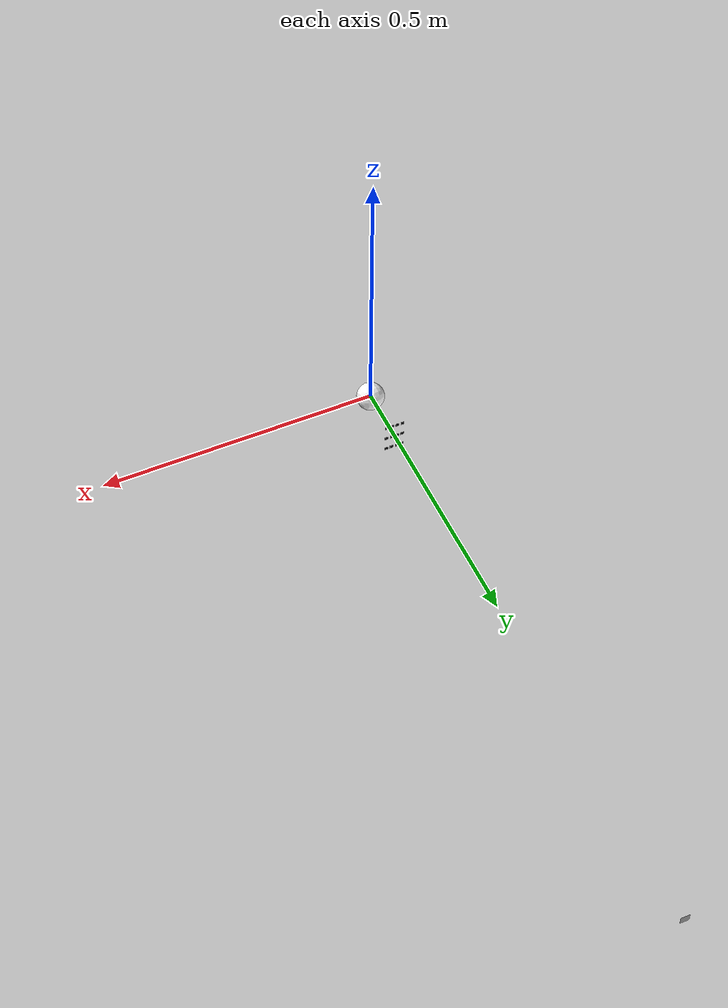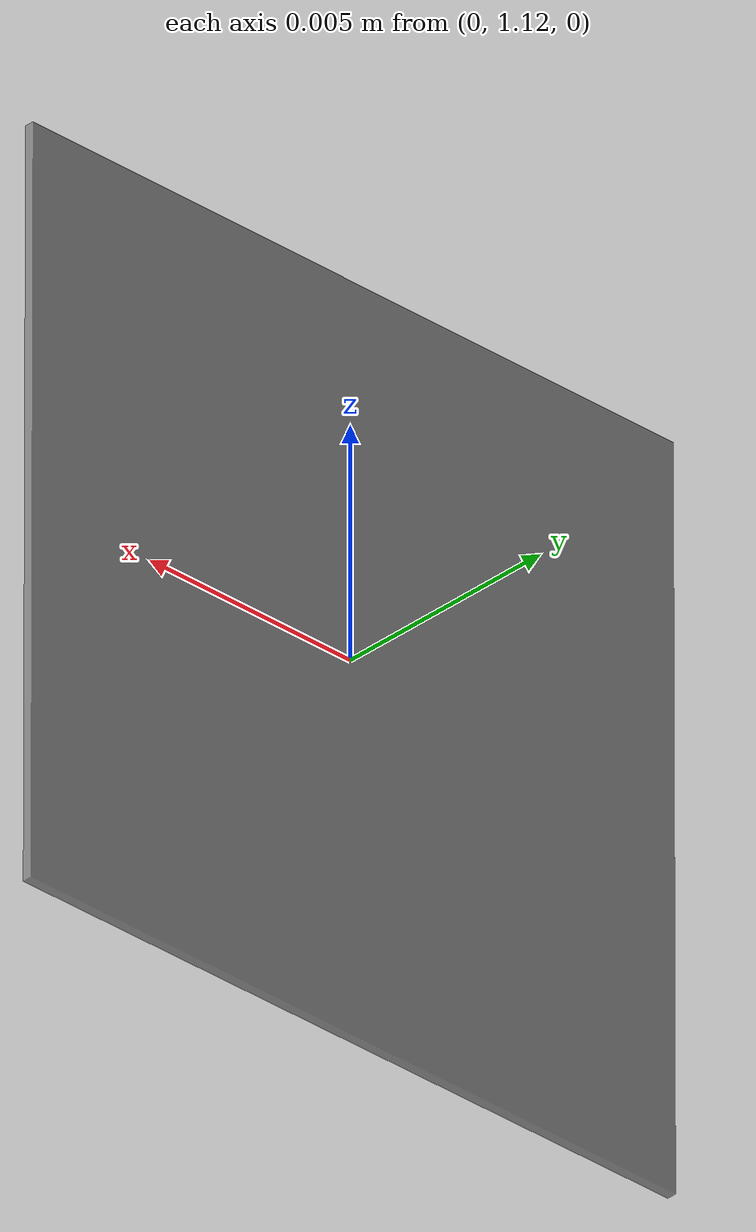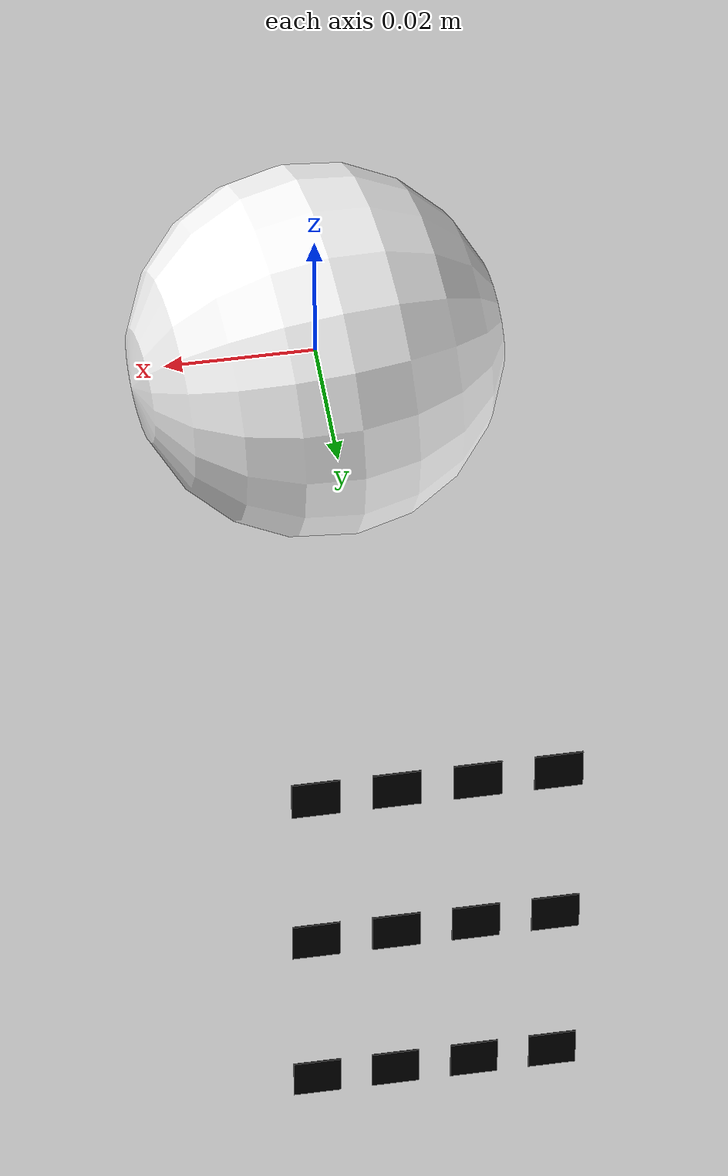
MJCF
<?xml version="1.0"?>
<mujoco>
    <compiler angle="radian"/>
    <option collision="all" timestep="0.002"/>
    <size njmax="1000" nconmax="400"/>
    <default class="main">
        <default class="eye">
            <position ctrllimited="true" kp="5"/>
            <joint type="hinge" stiffness="0.0" damping="0.5" armature="0.0" limited="true"/>
        </default>
        <default class="temp-moving-bgp">
            <joint type="slide" stiffness="0.0" damping="0.5" armature="0.0" limited="true"/>
        </default>
        <default class="smart-glass-grid">
            <geom type="box" size="0.0030 0.0001 0.0030" rgba="0 0 0 1"/>
        </default>
        <default class="background-grid">
            <geom type="box" size="0.008 0.0001 0.008" rgba="0.5 0.5 0.5 0.8"/>
        </default>
    </default>
    <asset>
        <texture type="skybox" builtin="gradient" rgb1="1 1 1" rgb2="0.6 0.8 1" width="256" height="256"/>
        <texture type="cube" name="blue-eye" file="assets/blue_eye_texture_circle.png" gridsize="3 4" gridlayout=".U..LFRB.D.."/>
        <material name="blue-eye" texture="blue-eye" texuniform="true"/>
        <mesh name="eye" file="assets/basic_eye_2.stl" scale="0.05 0.05 0.05"/>
    </asset>
    <worldbody>
        <light name="scene_directional_light" directional="true" castshadow="false" cutoff="4" exponent="20"
               diffuse="1 1 1" specular="0 0 0" pos=".9 .3 2.5"/>

        <camera name="env" pos="-0.5 -0.35 0.15" euler="1.0 -0.85 -0.37"/>

        <body name="eye" pos="0 0 0" quat="0.7071068 0.7071068 0 0">
            <geom name="eye" type="sphere" size="0.025" material="blue-eye" rgba="1 1 1 1" quat="0.6625191 0.0130711 0.7488417 0.0115643"/>
            <camera name="eye" fovy="90"/>
            <joint name="eye-joint-x" class="eye" axis="1 0 0" range="-1.0 1.0"/>
            <joint name="eye-joint-y" class="eye" axis="0 1 0" range="-1.0 1.0"/>
            <site name="rangefinder-site" quat="0 0 1 0"/>
        </body>

        <body name="smart-glass-pane" pos="0 0.10 0">
            <geom name="grid-7" pos="-0.015 0 0.0268" class="smart-glass-grid"/>
            <geom name="grid-8" pos="-0.005 0 0.0268" class="smart-glass-grid"/>
            <geom name="grid-9" pos="0.005 0 0.0268" class="smart-glass-grid"/>
            <geom name="grid-10" pos="0.015 0 0.0268" class="smart-glass-grid"/>

            <geom name="grid-25" pos="-0.015 0 0" class="smart-glass-grid"/>
            <geom name="grid-26" pos="-0.005 0 0" class="smart-glass-grid"/>
            <geom name="grid-27" pos="0.005 0 0" class="smart-glass-grid"/>
            <geom name="grid-28" pos="0.015 0 0" class="smart-glass-grid"/>

            <geom name="grid-43" pos="-0.015 0 -0.0268" class="smart-glass-grid"/>
            <geom name="grid-44" pos="-0.005 0 -0.0268" class="smart-glass-grid"/>
            <geom name="grid-45" pos="0.005 0 -0.0268" class="smart-glass-grid"/>
            <geom name="grid-46" pos="0.015 0 -0.0268" class="smart-glass-grid"/>
        </body>

        <body name="background-pane" pos="0 1.12 0">
            <joint name="moving-bgp" class="temp-moving-bgp" axis="0 1 0" range="-1 0"/>
            <geom name="grid-bgp" pos="-0 0 0" class="background-grid"/>
        </body>

    </worldbody>
    <actuator>
        <position name="eye-x-motor" joint="eye-joint-x" class="eye" ctrlrange="-1.0 1.0"/>
        <position name="eye-y-motor" joint="eye-joint-y" class="eye" ctrlrange="-1.0 1.0"/>
    </actuator>
    <sensor>
        <rangefinder name="rangefinder" site="rangefinder-site"/>
    </sensor>
</mujoco>
